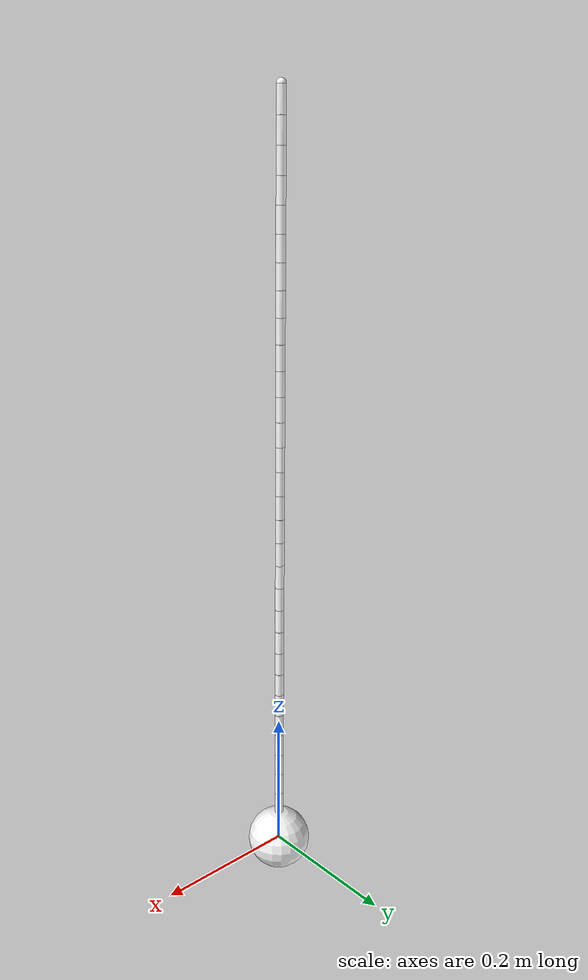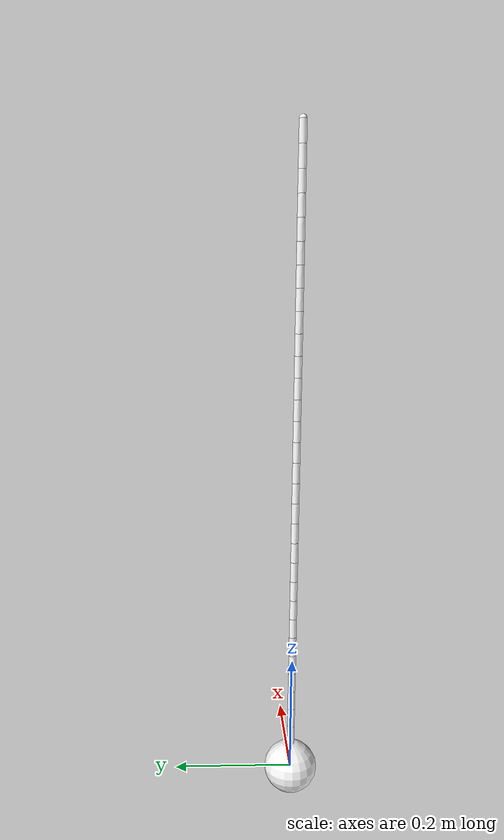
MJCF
<mujoco model="unnamed_model">
  <compiler autolimits="true" angle="radian"/>
  <option impratio="10" integrator="implicit"/>
  <default>
    <default class="/"/>
  </default>
  <asset>
    <material name="white" class="/" rgba="1 1 1 1"/>
  </asset>
  <worldbody>
    <body name="whip">
      <geom name="//unnamed_geom_0" class="/" type="sphere" size="0.044999999999999998" material="white"/>
      <body name="B0" pos="0 0 0.044999999999999998">
        <joint name="J0_0" class="/" type="hinge" group="3" axis="1 0 0" stiffness="0.24199999999999999" springref="0" damping="0.091999999999999998"/>
        <joint name="J1_0" class="/" type="hinge" group="3" axis="0 1 0" stiffness="0.24199999999999999" springref="0" damping="0.091999999999999998"/>
        <geom name="G0_0" class="/" type="sphere" size="0.0060000000000000001" material="white" mass="0.016666666666666666" pos="0 0 0.033333333333333333"/>
        <geom name="G1_0" class="/" type="cylinder" size="0.0060000000000000001" material="white" mass="0" fromto="0 0 0 0 0 0.033333333333333333"/>
        <body name="B1" pos="0 0 0.033333333333333333">
          <joint name="J0_1" class="/" type="hinge" group="3" axis="1 0 0" stiffness="0.24199999999999999" springref="0" damping="0.091999999999999998"/>
          <joint name="J1_1" class="/" type="hinge" group="3" axis="0 1 0" stiffness="0.24199999999999999" springref="0" damping="0.091999999999999998"/>
          <geom name="G0_1" class="/" type="sphere" size="0.0060000000000000001" material="white" mass="0.016666666666666666" pos="0 0 0.033333333333333333"/>
          <geom name="G1_1" class="/" type="cylinder" size="0.0060000000000000001" material="white" mass="0" fromto="0 0 0 0 0 0.033333333333333333"/>
          <body name="B2" pos="0 0 0.033333333333333333">
            <joint name="J0_2" class="/" type="hinge" group="3" axis="1 0 0" stiffness="0.24199999999999999" springref="0" damping="0.091999999999999998"/>
            <joint name="J1_2" class="/" type="hinge" group="3" axis="0 1 0" stiffness="0.24199999999999999" springref="0" damping="0.091999999999999998"/>
            <geom name="G0_2" class="/" type="sphere" size="0.0060000000000000001" material="white" mass="0.016666666666666666" pos="0 0 0.033333333333333333"/>
            <geom name="G1_2" class="/" type="cylinder" size="0.0060000000000000001" material="white" mass="0" fromto="0 0 0 0 0 0.033333333333333333"/>
            <body name="B3" pos="0 0 0.033333333333333333">
              <joint name="J0_3" class="/" type="hinge" group="3" axis="1 0 0" stiffness="0.24199999999999999" springref="0" damping="0.091999999999999998"/>
              <joint name="J1_3" class="/" type="hinge" group="3" axis="0 1 0" stiffness="0.24199999999999999" springref="0" damping="0.091999999999999998"/>
              <geom name="G0_3" class="/" type="sphere" size="0.0060000000000000001" material="white" mass="0.016666666666666666" pos="0 0 0.033333333333333333"/>
              <geom name="G1_3" class="/" type="cylinder" size="0.0060000000000000001" material="white" mass="0" fromto="0 0 0 0 0 0.033333333333333333"/>
              <body name="B4" pos="0 0 0.033333333333333333">
                <joint name="J0_4" class="/" type="hinge" group="3" axis="1 0 0" stiffness="0.24199999999999999" springref="0" damping="0.091999999999999998"/>
                <joint name="J1_4" class="/" type="hinge" group="3" axis="0 1 0" stiffness="0.24199999999999999" springref="0" damping="0.091999999999999998"/>
                <geom name="G0_4" class="/" type="sphere" size="0.0060000000000000001" material="white" mass="0.016666666666666666" pos="0 0 0.033333333333333333"/>
                <geom name="G1_4" class="/" type="cylinder" size="0.0060000000000000001" material="white" mass="0" fromto="0 0 0 0 0 0.033333333333333333"/>
                <body name="B5" pos="0 0 0.033333333333333333">
                  <joint name="J0_5" class="/" type="hinge" group="3" axis="1 0 0" stiffness="0.24199999999999999" springref="0" damping="0.091999999999999998"/>
                  <joint name="J1_5" class="/" type="hinge" group="3" axis="0 1 0" stiffness="0.24199999999999999" springref="0" damping="0.091999999999999998"/>
                  <geom name="G0_5" class="/" type="sphere" size="0.0060000000000000001" material="white" mass="0.016666666666666666" pos="0 0 0.033333333333333333"/>
                  <geom name="G1_5" class="/" type="cylinder" size="0.0060000000000000001" material="white" mass="0" fromto="0 0 0 0 0 0.033333333333333333"/>
                  <body name="B6" pos="0 0 0.033333333333333333">
                    <joint name="J0_6" class="/" type="hinge" group="3" axis="1 0 0" stiffness="0.24199999999999999" springref="0" damping="0.091999999999999998"/>
                    <joint name="J1_6" class="/" type="hinge" group="3" axis="0 1 0" stiffness="0.24199999999999999" springref="0" damping="0.091999999999999998"/>
                    <geom name="G0_6" class="/" type="sphere" size="0.0060000000000000001" material="white" mass="0.016666666666666666" pos="0 0 0.033333333333333333"/>
                    <geom name="G1_6" class="/" type="cylinder" size="0.0060000000000000001" material="white" mass="0" fromto="0 0 0 0 0 0.033333333333333333"/>
                    <body name="B7" pos="0 0 0.033333333333333333">
                      <joint name="J0_7" class="/" type="hinge" group="3" axis="1 0 0" stiffness="0.24199999999999999" springref="0" damping="0.091999999999999998"/>
                      <joint name="J1_7" class="/" type="hinge" group="3" axis="0 1 0" stiffness="0.24199999999999999" springref="0" damping="0.091999999999999998"/>
                      <geom name="G0_7" class="/" type="sphere" size="0.0060000000000000001" material="white" mass="0.016666666666666666" pos="0 0 0.033333333333333333"/>
                      <geom name="G1_7" class="/" type="cylinder" size="0.0060000000000000001" material="white" mass="0" fromto="0 0 0 0 0 0.033333333333333333"/>
                      <body name="B8" pos="0 0 0.033333333333333333">
                        <joint name="J0_8" class="/" type="hinge" group="3" axis="1 0 0" stiffness="0.24199999999999999" springref="0" damping="0.091999999999999998"/>
                        <joint name="J1_8" class="/" type="hinge" group="3" axis="0 1 0" stiffness="0.24199999999999999" springref="0" damping="0.091999999999999998"/>
                        <geom name="G0_8" class="/" type="sphere" size="0.0060000000000000001" material="white" mass="0.016666666666666666" pos="0 0 0.033333333333333333"/>
                        <geom name="G1_8" class="/" type="cylinder" size="0.0060000000000000001" material="white" mass="0" fromto="0 0 0 0 0 0.033333333333333333"/>
                        <body name="B9" pos="0 0 0.033333333333333333">
                          <joint name="J0_9" class="/" type="hinge" group="3" axis="1 0 0" stiffness="0.24199999999999999" springref="0" damping="0.091999999999999998"/>
                          <joint name="J1_9" class="/" type="hinge" group="3" axis="0 1 0" stiffness="0.24199999999999999" springref="0" damping="0.091999999999999998"/>
                          <geom name="G0_9" class="/" type="sphere" size="0.0060000000000000001" material="white" mass="0.016666666666666666" pos="0 0 0.033333333333333333"/>
                          <geom name="G1_9" class="/" type="cylinder" size="0.0060000000000000001" material="white" mass="0" fromto="0 0 0 0 0 0.033333333333333333"/>
                          <body name="B10" pos="0 0 0.033333333333333333">
                            <joint name="J0_10" class="/" type="hinge" group="3" axis="1 0 0" stiffness="0.24199999999999999" springref="0" damping="0.091999999999999998"/>
                            <joint name="J1_10" class="/" type="hinge" group="3" axis="0 1 0" stiffness="0.24199999999999999" springref="0" damping="0.091999999999999998"/>
                            <geom name="G0_10" class="/" type="sphere" size="0.0060000000000000001" material="white" mass="0.016666666666666666" pos="0 0 0.033333333333333333"/>
                            <geom name="G1_10" class="/" type="cylinder" size="0.0060000000000000001" material="white" mass="0" fromto="0 0 0 0 0 0.033333333333333333"/>
                            <body name="B11" pos="0 0 0.033333333333333333">
                              <joint name="J0_11" class="/" type="hinge" group="3" axis="1 0 0" stiffness="0.24199999999999999" springref="0" damping="0.091999999999999998"/>
                              <joint name="J1_11" class="/" type="hinge" group="3" axis="0 1 0" stiffness="0.24199999999999999" springref="0" damping="0.091999999999999998"/>
                              <geom name="G0_11" class="/" type="sphere" size="0.0060000000000000001" material="white" mass="0.016666666666666666" pos="0 0 0.033333333333333333"/>
                              <geom name="G1_11" class="/" type="cylinder" size="0.0060000000000000001" material="white" mass="0" fromto="0 0 0 0 0 0.033333333333333333"/>
                              <body name="B12" pos="0 0 0.033333333333333333">
                                <joint name="J0_12" class="/" type="hinge" group="3" axis="1 0 0" stiffness="0.24199999999999999" springref="0" damping="0.091999999999999998"/>
                                <joint name="J1_12" class="/" type="hinge" group="3" axis="0 1 0" stiffness="0.24199999999999999" springref="0" damping="0.091999999999999998"/>
                                <geom name="G0_12" class="/" type="sphere" size="0.0060000000000000001" material="white" mass="0.016666666666666666" pos="0 0 0.033333333333333333"/>
                                <geom name="G1_12" class="/" type="cylinder" size="0.0060000000000000001" material="white" mass="0" fromto="0 0 0 0 0 0.033333333333333333"/>
                                <body name="B13" pos="0 0 0.033333333333333333">
                                  <joint name="J0_13" class="/" type="hinge" group="3" axis="1 0 0" stiffness="0.24199999999999999" springref="0" damping="0.091999999999999998"/>
                                  <joint name="J1_13" class="/" type="hinge" group="3" axis="0 1 0" stiffness="0.24199999999999999" springref="0" damping="0.091999999999999998"/>
                                  <geom name="G0_13" class="/" type="sphere" size="0.0060000000000000001" material="white" mass="0.016666666666666666" pos="0 0 0.033333333333333333"/>
                                  <geom name="G1_13" class="/" type="cylinder" size="0.0060000000000000001" material="white" mass="0" fromto="0 0 0 0 0 0.033333333333333333"/>
                                  <body name="B14" pos="0 0 0.033333333333333333">
                                    <joint name="J0_14" class="/" type="hinge" group="3" axis="1 0 0" stiffness="0.24199999999999999" springref="0" damping="0.091999999999999998"/>
                                    <joint name="J1_14" class="/" type="hinge" group="3" axis="0 1 0" stiffness="0.24199999999999999" springref="0" damping="0.091999999999999998"/>
                                    <geom name="G0_14" class="/" type="sphere" size="0.0060000000000000001" material="white" mass="0.016666666666666666" pos="0 0 0.033333333333333333"/>
                                    <geom name="G1_14" class="/" type="cylinder" size="0.0060000000000000001" material="white" mass="0" fromto="0 0 0 0 0 0.033333333333333333"/>
                                    <body name="B15" pos="0 0 0.033333333333333333">
                                      <joint name="J0_15" class="/" type="hinge" group="3" axis="1 0 0" stiffness="0.24199999999999999" springref="0" damping="0.091999999999999998"/>
                                      <joint name="J1_15" class="/" type="hinge" group="3" axis="0 1 0" stiffness="0.24199999999999999" springref="0" damping="0.091999999999999998"/>
                                      <geom name="G0_15" class="/" type="sphere" size="0.0060000000000000001" material="white" mass="0.016666666666666666" pos="0 0 0.033333333333333333"/>
                                      <geom name="G1_15" class="/" type="cylinder" size="0.0060000000000000001" material="white" mass="0" fromto="0 0 0 0 0 0.033333333333333333"/>
                                      <body name="B16" pos="0 0 0.033333333333333333">
                                        <joint name="J0_16" class="/" type="hinge" group="3" axis="1 0 0" stiffness="0.24199999999999999" springref="0" damping="0.091999999999999998"/>
                                        <joint name="J1_16" class="/" type="hinge" group="3" axis="0 1 0" stiffness="0.24199999999999999" springref="0" damping="0.091999999999999998"/>
                                        <geom name="G0_16" class="/" type="sphere" size="0.0060000000000000001" material="white" mass="0.016666666666666666" pos="0 0 0.033333333333333333"/>
                                        <geom name="G1_16" class="/" type="cylinder" size="0.0060000000000000001" material="white" mass="0" fromto="0 0 0 0 0 0.033333333333333333"/>
                                        <body name="B17" pos="0 0 0.033333333333333333">
                                          <joint name="J0_17" class="/" type="hinge" group="3" axis="1 0 0" stiffness="0.24199999999999999" springref="0" damping="0.091999999999999998"/>
                                          <joint name="J1_17" class="/" type="hinge" group="3" axis="0 1 0" stiffness="0.24199999999999999" springref="0" damping="0.091999999999999998"/>
                                          <geom name="G0_17" class="/" type="sphere" size="0.0060000000000000001" material="white" mass="0.016666666666666666" pos="0 0 0.033333333333333333"/>
                                          <geom name="G1_17" class="/" type="cylinder" size="0.0060000000000000001" material="white" mass="0" fromto="0 0 0 0 0 0.033333333333333333"/>
                                          <body name="B18" pos="0 0 0.033333333333333333">
                                            <joint name="J0_18" class="/" type="hinge" group="3" axis="1 0 0" stiffness="0.24199999999999999" springref="0" damping="0.091999999999999998"/>
                                            <joint name="J1_18" class="/" type="hinge" group="3" axis="0 1 0" stiffness="0.24199999999999999" springref="0" damping="0.091999999999999998"/>
                                            <geom name="G0_18" class="/" type="sphere" size="0.0060000000000000001" material="white" mass="0.016666666666666666" pos="0 0 0.033333333333333333"/>
                                            <geom name="G1_18" class="/" type="cylinder" size="0.0060000000000000001" material="white" mass="0" fromto="0 0 0 0 0 0.033333333333333333"/>
                                            <body name="B19" pos="0 0 0.033333333333333333">
                                              <joint name="J0_19" class="/" type="hinge" group="3" axis="1 0 0" stiffness="0.24199999999999999" springref="0" damping="0.091999999999999998"/>
                                              <joint name="J1_19" class="/" type="hinge" group="3" axis="0 1 0" stiffness="0.24199999999999999" springref="0" damping="0.091999999999999998"/>
                                              <geom name="G0_19" class="/" type="sphere" size="0.0060000000000000001" material="white" mass="0.016666666666666666" pos="0 0 0.033333333333333333"/>
                                              <geom name="G1_19" class="/" type="cylinder" size="0.0060000000000000001" material="white" mass="0" fromto="0 0 0 0 0 0.033333333333333333"/>
                                              <body name="B20" pos="0 0 0.033333333333333333">
                                                <joint name="J0_20" class="/" type="hinge" group="3" axis="1 0 0" stiffness="0.24199999999999999" springref="0" damping="0.091999999999999998"/>
                                                <joint name="J1_20" class="/" type="hinge" group="3" axis="0 1 0" stiffness="0.24199999999999999" springref="0" damping="0.091999999999999998"/>
                                                <geom name="G0_20" class="/" type="sphere" size="0.0060000000000000001" material="white" mass="0.016666666666666666" pos="0 0 0.033333333333333333"/>
                                                <geom name="G1_20" class="/" type="cylinder" size="0.0060000000000000001" material="white" mass="0" fromto="0 0 0 0 0 0.033333333333333333"/>
                                                <body name="B21" pos="0 0 0.033333333333333333">
                                                  <joint name="J0_21" class="/" type="hinge" group="3" axis="1 0 0" stiffness="0.24199999999999999" springref="0" damping="0.091999999999999998"/>
                                                  <joint name="J1_21" class="/" type="hinge" group="3" axis="0 1 0" stiffness="0.24199999999999999" springref="0" damping="0.091999999999999998"/>
                                                  <geom name="G0_21" class="/" type="sphere" size="0.0060000000000000001" material="white" mass="0.016666666666666666" pos="0 0 0.033333333333333333"/>
                                                  <geom name="G1_21" class="/" type="cylinder" size="0.0060000000000000001" material="white" mass="0" fromto="0 0 0 0 0 0.033333333333333333"/>
                                                  <body name="B22" pos="0 0 0.033333333333333333">
                                                    <joint name="J0_22" class="/" type="hinge" group="3" axis="1 0 0" stiffness="0.24199999999999999" springref="0" damping="0.091999999999999998"/>
                                                    <joint name="J1_22" class="/" type="hinge" group="3" axis="0 1 0" stiffness="0.24199999999999999" springref="0" damping="0.091999999999999998"/>
                                                    <geom name="G0_22" class="/" type="sphere" size="0.0060000000000000001" material="white" mass="0.016666666666666666" pos="0 0 0.033333333333333333"/>
                                                    <geom name="G1_22" class="/" type="cylinder" size="0.0060000000000000001" material="white" mass="0" fromto="0 0 0 0 0 0.033333333333333333"/>
                                                    <body name="B23" pos="0 0 0.033333333333333333">
                                                      <joint name="J0_23" class="/" type="hinge" group="3" axis="1 0 0" stiffness="0.24199999999999999" springref="0" damping="0.091999999999999998"/>
                                                      <joint name="J1_23" class="/" type="hinge" group="3" axis="0 1 0" stiffness="0.24199999999999999" springref="0" damping="0.091999999999999998"/>
                                                      <geom name="G0_23" class="/" type="sphere" size="0.0060000000000000001" material="white" mass="0.016666666666666666" pos="0 0 0.033333333333333333"/>
                                                      <geom name="G1_23" class="/" type="cylinder" size="0.0060000000000000001" material="white" mass="0" fromto="0 0 0 0 0 0.033333333333333333"/>
                                                      <body name="B24" pos="0 0 0.033333333333333333">
                                                        <joint name="J0_24" class="/" type="hinge" group="3" axis="1 0 0" stiffness="0.24199999999999999" springref="0" damping="0.091999999999999998"/>
                                                        <joint name="J1_24" class="/" type="hinge" group="3" axis="0 1 0" stiffness="0.24199999999999999" springref="0" damping="0.091999999999999998"/>
                                                        <geom name="G0_24" class="/" type="sphere" size="0.0060000000000000001" material="white" mass="0.016666666666666666" pos="0 0 0.033333333333333333"/>
                                                        <geom name="G1_24" class="/" type="cylinder" size="0.0060000000000000001" material="white" mass="0" fromto="0 0 0 0 0 0.033333333333333333"/>
                                                        <body name="B25" pos="0 0 0.033333333333333333">
                                                          <joint name="J0_25" class="/" type="hinge" group="3" axis="1 0 0" stiffness="0.24199999999999999" springref="0" damping="0.091999999999999998"/>
                                                          <joint name="J1_25" class="/" type="hinge" group="3" axis="0 1 0" stiffness="0.24199999999999999" springref="0" damping="0.091999999999999998"/>
                                                          <geom name="G0_25" class="/" type="sphere" size="0.0060000000000000001" material="white" mass="0.016666666666666666" pos="0 0 0.033333333333333333"/>
                                                          <geom name="G1_25" class="/" type="cylinder" size="0.0060000000000000001" material="white" mass="0" fromto="0 0 0 0 0 0.033333333333333333"/>
                                                          <body name="B26" pos="0 0 0.033333333333333333">
                                                            <joint name="J0_26" class="/" type="hinge" group="3" axis="1 0 0" stiffness="0.24199999999999999" springref="0" damping="0.091999999999999998"/>
                                                            <joint name="J1_26" class="/" type="hinge" group="3" axis="0 1 0" stiffness="0.24199999999999999" springref="0" damping="0.091999999999999998"/>
                                                            <geom name="G0_26" class="/" type="sphere" size="0.0060000000000000001" material="white" mass="0.016666666666666666" pos="0 0 0.033333333333333333"/>
                                                            <geom name="G1_26" class="/" type="cylinder" size="0.0060000000000000001" material="white" mass="0" fromto="0 0 0 0 0 0.033333333333333333"/>
                                                            <body name="B27" pos="0 0 0.033333333333333333">
                                                            <joint name="J0_27" class="/" type="hinge" group="3" axis="1 0 0" stiffness="0.24199999999999999" springref="0" damping="0.091999999999999998"/>
                                                            <joint name="J1_27" class="/" type="hinge" group="3" axis="0 1 0" stiffness="0.24199999999999999" springref="0" damping="0.091999999999999998"/>
                                                            <geom name="G0_27" class="/" type="sphere" size="0.0060000000000000001" material="white" mass="0.016666666666666666" pos="0 0 0.033333333333333333"/>
                                                            <geom name="G1_27" class="/" type="cylinder" size="0.0060000000000000001" material="white" mass="0" fromto="0 0 0 0 0 0.033333333333333333"/>
                                                            <body name="B28" pos="0 0 0.033333333333333333">
                                                            <joint name="J0_28" class="/" type="hinge" group="3" axis="1 0 0" stiffness="0.24199999999999999" springref="0" damping="0.091999999999999998"/>
                                                            <joint name="J1_28" class="/" type="hinge" group="3" axis="0 1 0" stiffness="0.24199999999999999" springref="0" damping="0.091999999999999998"/>
                                                            <geom name="G0_28" class="/" type="sphere" size="0.0060000000000000001" material="white" mass="0.016666666666666666" pos="0 0 0.033333333333333333"/>
                                                            <geom name="G1_28" class="/" type="cylinder" size="0.0060000000000000001" material="white" mass="0" fromto="0 0 0 0 0 0.033333333333333333"/>
                                                            <body name="B29" pos="0 0 0.033333333333333333">
                                                            <joint name="J0_29" class="/" type="hinge" group="3" axis="1 0 0" stiffness="0.24199999999999999" springref="0" damping="0.091999999999999998"/>
                                                            <joint name="J1_29" class="/" type="hinge" group="3" axis="0 1 0" stiffness="0.24199999999999999" springref="0" damping="0.091999999999999998"/>
                                                            <geom name="G0_29" class="/" type="sphere" size="0.0060000000000000001" material="white" mass="0.016666666666666666" pos="0 0 0.033333333333333333"/>
                                                            <geom name="G1_29" class="/" type="cylinder" size="0.0060000000000000001" material="white" mass="0" fromto="0 0 0 0 0 0.033333333333333333"/>
                                                            <body name="whip_end" pos="0 0 0.033333333333333333"/>
                                                            </body>
                                                            </body>
                                                            </body>
                                                          </body>
                                                        </body>
                                                      </body>
                                                    </body>
                                                  </body>
                                                </body>
                                              </body>
                                            </body>
                                          </body>
                                        </body>
                                      </body>
                                    </body>
                                  </body>
                                </body>
                              </body>
                            </body>
                          </body>
                        </body>
                      </body>
                    </body>
                  </body>
                </body>
              </body>
            </body>
          </body>
        </body>
      </body>
    </body>
  </worldbody>
</mujoco>
